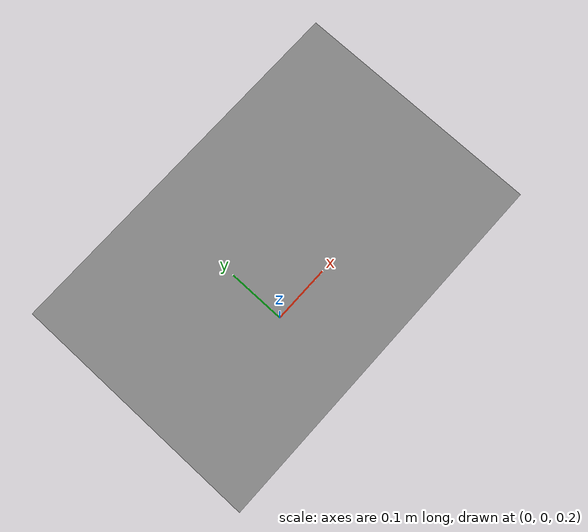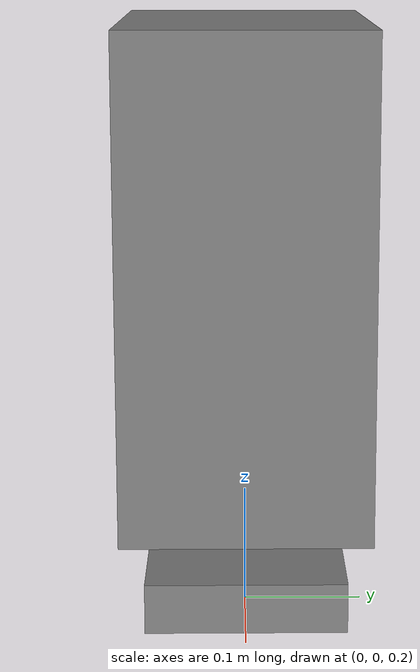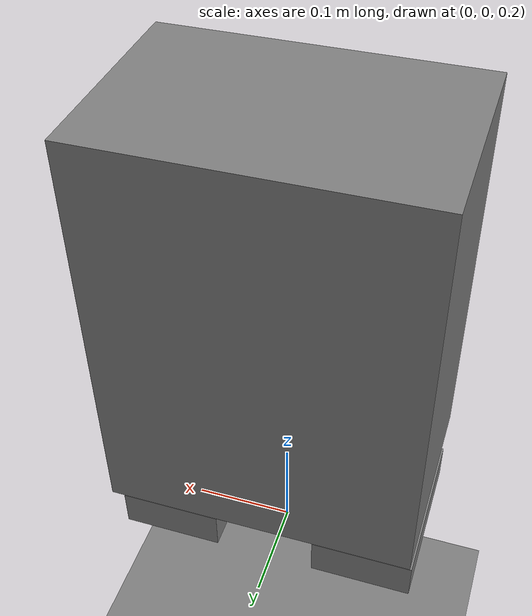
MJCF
<mujoco>
  <worldbody>
    <body name="ground" pos="0 0 0">
      <geom name="ground_geom" type="plane" size="5 5 0.1" rgba="0.5 0.5 0.5 1"/>
    </body>
    <body name="base" pos="0 0 0.5">
      <freejoint name="base_joint"/>
      <geom name="torso_geom" type="box" size="0.15 0.1 0.2" mass="5.0"/>
      <body name="left_foot" pos="0.1 0 -0.25">
        <joint name="left_ankle" type="hinge" axis="0 1 0" range="-0.5 0.5"/>
        <geom name="left_foot_geom" type="box" size="0.05 0.08 0.02" mass="0.2"/>
      </body>
      <body name="right_foot" pos="-0.1 0 -0.25">
        <joint name="right_ankle" type="hinge" axis="0 1 0" range="-0.5 0.5"/>
        <geom name="right_foot_geom" type="box" size="0.05 0.08 0.02" mass="0.2"/>
      </body>
    </body>
  </worldbody>
</mujoco>
